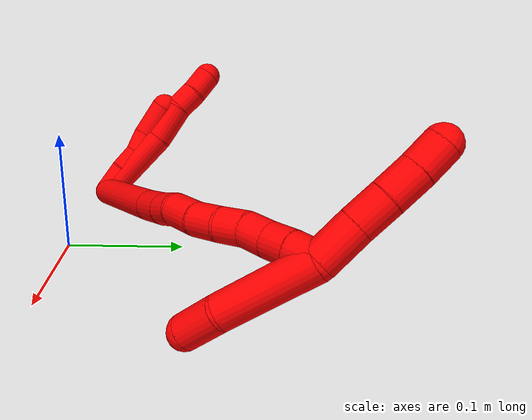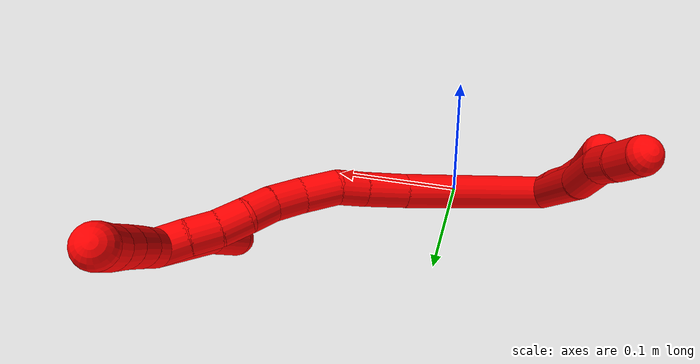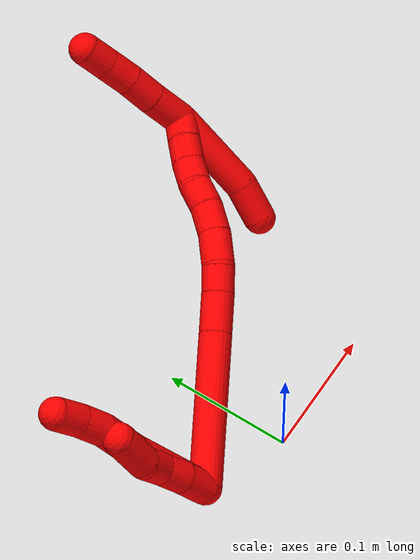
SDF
<sdf version="1.7">
 <world name="default">
  <model name="photoneo_s_sensor">
   <static>1</static>
   <pose>0 0 2 1.57079 1.57079 3.14159</pose>
   <link name="link">
    <inertial><mass>0.1</mass></inertial>
    <sensor name="sensor" type="depth">
     <update_rate>30</update_rate>
     <camera>
      <horizontal_fov>1.22</horizontal_fov>
      <image><width>1920</width><height>1200</height><format>B8G8R8</format></image>
      <clip><near>0.1</near><far>4</far></clip>
      <depth_camera><output>points</output></depth_camera>
     </camera>
     <plugin name="camera_plugin" filename="libgazebo_ros_depth_camera.so">
      <baseline>0.2</baseline>
      <alwaysOn>1</alwaysOn>
      <updateRate>0.0</updateRate>
      <cameraName>camera_ir</cameraName>
      <imageTopicName>/camera/color/image_raw</imageTopicName>
      <cameraInfoTopicName>/camera/color/camera_info</cameraInfoTopicName>
      <depthImageTopicName>/camera/depth/image_raw</depthImageTopicName>
      <depthImageCameraInfoTopicName>/camera/depth/camera_info</depthImageCameraInfoTopicName>
      <pointCloudTopicName>/camera/depth/points</pointCloudTopicName>
      <frameName>fr_optical</frameName>
      <pointCloudCutoff>0.1</pointCloudCutoff>
      <pointCloudCutoffMax>2.0</pointCloudCutoffMax>
      <distortionK1>0</distortionK1>
      <distortionK2>0</distortionK2>
      <distortionK3>0</distortionK3>
      <distortionT1>0</distortionT1>
      <distortionT2>0</distortionT2>
      <CxPrime>0</CxPrime>
      <Cx>0</Cx>
      <Cy>0</Cy>
      <focalLength>0</focalLength>
      <hackBaseline>0</hackBaseline>
     </plugin>
    </sensor>
   </link>
  </model>
  <model name="bin">
   <static>1</static>
   <link name="bottom">
    <collision name="collision-bottom">
     <pose>0 0 -0.01 0 -0 0</pose>
     <geometry><box><size>0.8 0.6 0.02</size></box></geometry>
     <surface>
      <friction><ode><mu>100</mu><mu2>100</mu2></ode></friction>
      <contact><collide_bitmask>65535</collide_bitmask></contact>
     </surface>
    </collision>
   </link>
   <link name="west_wall">
    <collision name="collision-west_wall">
     <pose>-0.41 0 0.1 0 -0 0</pose>
     <geometry><box><size>0.02 0.6 0.2</size></box></geometry>
     <surface>
      <friction><ode><mu>100</mu><mu2>100</mu2></ode></friction>
      <contact><collide_bitmask>65535</collide_bitmask></contact>
     </surface>
    </collision>
   </link>
   <link name="east_wall">
    <collision name="collision-east_wall">
     <pose>0.41 0 0.1 0 -0 0</pose>
     <geometry><box><size>0.02 0.6 0.2</size></box></geometry>
     <surface>
      <friction><ode><mu>100</mu><mu2>100</mu2></ode></friction>
      <contact><collide_bitmask>65535</collide_bitmask></contact>
     </surface>
    </collision>
   </link>
   <link name="south_wall">
    <collision name="collision-south_wall">
     <pose>0 -0.31 0.1 0 -0 0</pose>
     <geometry><box><size>0.8 0.02 0.2</size></box></geometry>
     <surface>
      <friction><ode><mu>100</mu><mu2>100</mu2></ode></friction>
      <contact><collide_bitmask>65535</collide_bitmask></contact>
     </surface>
    </collision>
   </link>
   <link name="north_wall">
    <collision name="collision-north_wall">
     <pose>0 0.31 0.1 0 -0 0</pose>
     <geometry><box><size>0.8 0.02 0.2</size></box></geometry>
     <surface>
      <friction><ode><mu>100</mu><mu2>100</mu2></ode></friction>
      <contact><collide_bitmask>65535</collide_bitmask></contact>
     </surface>
    </collision>
   </link>
  </model>
  <model name="2">
   <static>0</static>
   <link name="2">
    <collision name="collision-cylinder-e_1_2_8">
     <pose>0.003399 -0.003873 -0.035125 3.03178 0.095888 1.43534</pose>
     <geometry><cylinder><radius>0.0125</radius><length>0.071003</length></cylinder></geometry>
     <surface>
      <friction><ode><mu>1.16</mu><mu2>1.16</mu2><slip1>0</slip1><slip2>0</slip2></ode></friction>
      <contact><ode><kp>1e+06</kp><kd>1</kd><max_vel>0</max_vel><min_depth>0.001</min_depth></ode></contact>
     </surface>
    </collision>
    <visual name="visual-cylinder-e_1_2_8">
     <pose>0.003399 -0.003873 -0.035125 3.03178 0.095888 1.43534</pose>
     <geometry><cylinder><radius>0.0125</radius><length>0.071003</length></cylinder></geometry>
     <material><ambient>1 0 0 1</ambient></material>
    </visual>
    <collision name="collision-cylinder-e_2_8_9">
     <pose>0.00718 -0.006659 -0.087976 -3.08033 0.021536 -0.675872</pose>
     <geometry><cylinder><radius>0.0125</radius><length>0.035525</length></cylinder></geometry>
     <surface>
      <friction><ode><mu>1.16</mu><mu2>1.16</mu2><slip1>0</slip1><slip2>0</slip2></ode></friction>
      <contact><ode><kp>1e+06</kp><kd>1</kd><max_vel>0</max_vel><min_depth>0.001</min_depth></ode></contact>
     </surface>
    </collision>
    <visual name="visual-cylinder-e_2_8_9">
     <pose>0.00718 -0.006659 -0.087976 -3.08033 0.021536 -0.675872</pose>
     <geometry><cylinder><radius>0.0125</radius><length>0.035525</length></cylinder></geometry>
     <material><ambient>1 0 0 1</ambient></material>
    </visual>
    <collision name="collision-cylinder-e_3_9_10">
     <pose>0.008071 -0.007636 -0.116144 2.94641 0.047664 0.477644</pose>
     <geometry><cylinder><radius>0.0125</radius><length>0.021316</length></cylinder></geometry>
     <surface>
      <friction><ode><mu>1.16</mu><mu2>1.16</mu2><slip1>0</slip1><slip2>0</slip2></ode></friction>
      <contact><ode><kp>1e+06</kp><kd>1</kd><max_vel>0</max_vel><min_depth>0.001</min_depth></ode></contact>
     </surface>
    </collision>
    <visual name="visual-cylinder-e_3_9_10">
     <pose>0.008071 -0.007636 -0.116144 2.94641 0.047664 0.477644</pose>
     <geometry><cylinder><radius>0.0125</radius><length>0.021316</length></cylinder></geometry>
     <material><ambient>1 0 0 1</ambient></material>
    </visual>
    <collision name="collision-cylinder-e_4_10_6">
     <pose>0.007525 -0.011592 -0.137453 2.96925 -0.095231 -1.00816</pose>
     <geometry><cylinder><radius>0.0125</radius><length>0.022157</length></cylinder></geometry>
     <surface>
      <friction><ode><mu>1.16</mu><mu2>1.16</mu2><slip1>0</slip1><slip2>0</slip2></ode></friction>
      <contact><ode><kp>1e+06</kp><kd>1</kd><max_vel>0</max_vel><min_depth>0.001</min_depth></ode></contact>
     </surface>
    </collision>
    <visual name="visual-cylinder-e_4_10_6">
     <pose>0.007525 -0.011592 -0.137453 2.96925 -0.095231 -1.00816</pose>
     <geometry><cylinder><radius>0.0125</radius><length>0.022157</length></cylinder></geometry>
     <material><ambient>1 0 0 1</ambient></material>
    </visual>
    <collision name="collision-cylinder-e_1_2_11">
     <pose>-0.000325 -0.000441 -0.012446 3.10614 -0.026102 -1.26918</pose>
     <geometry><cylinder><radius>0.0125</radius><length>0.024916</length></cylinder></geometry>
     <surface>
      <friction><ode><mu>1.16</mu><mu2>1.16</mu2><slip1>0</slip1><slip2>0</slip2></ode></friction>
      <contact><ode><kp>1e+06</kp><kd>1</kd><max_vel>0</max_vel><min_depth>0.001</min_depth></ode></contact>
     </surface>
    </collision>
    <visual name="visual-cylinder-e_1_2_11">
     <pose>-0.000325 -0.000441 -0.012446 3.10614 -0.026102 -1.26918</pose>
     <geometry><cylinder><radius>0.0125</radius><length>0.024916</length></cylinder></geometry>
     <material><ambient>1 0 0 1</ambient></material>
    </visual>
    <collision name="collision-cylinder-e_2_11_12">
     <pose>-0.00057 -0.002339 -0.035355 3.00329 0.00764 0.110201</pose>
     <geometry><cylinder><radius>0.0125</radius><length>0.02113</length></cylinder></geometry>
     <surface>
      <friction><ode><mu>1.16</mu><mu2>1.16</mu2><slip1>0</slip1><slip2>0</slip2></ode></friction>
      <contact><ode><kp>1e+06</kp><kd>1</kd><max_vel>0</max_vel><min_depth>0.001</min_depth></ode></contact>
     </surface>
    </collision>
    <visual name="visual-cylinder-e_2_11_12">
     <pose>-0.00057 -0.002339 -0.035355 3.00329 0.00764 0.110201</pose>
     <geometry><cylinder><radius>0.0125</radius><length>0.02113</length></cylinder></geometry>
     <material><ambient>1 0 0 1</ambient></material>
    </visual>
    <collision name="collision-cylinder-e_3_12_13">
     <pose>-0.00283 -0.00335 -0.05595 -3.0976 -0.22686 2.76002</pose>
     <geometry><cylinder><radius>0.0125</radius><length>0.020814</length></cylinder></geometry>
     <surface>
      <friction><ode><mu>1.16</mu><mu2>1.16</mu2><slip1>0</slip1><slip2>0</slip2></ode></friction>
      <contact><ode><kp>1e+06</kp><kd>1</kd><max_vel>0</max_vel><min_depth>0.001</min_depth></ode></contact>
     </surface>
    </collision>
    <visual name="visual-cylinder-e_3_12_13">
     <pose>-0.00283 -0.00335 -0.05595 -3.0976 -0.22686 2.76002</pose>
     <geometry><cylinder><radius>0.0125</radius><length>0.020814</length></cylinder></geometry>
     <material><ambient>1 0 0 1</ambient></material>
    </visual>
    <collision name="collision-cylinder-e_4_13_5">
     <pose>-0.003397 -0.000539 -0.082385 -2.99754 0.107256 -1.27931</pose>
     <geometry><cylinder><radius>0.0125</radius><length>0.03314</length></cylinder></geometry>
     <surface>
      <friction><ode><mu>1.16</mu><mu2>1.16</mu2><slip1>0</slip1><slip2>0</slip2></ode></friction>
      <contact><ode><kp>1e+06</kp><kd>1</kd><max_vel>0</max_vel><min_depth>0.001</min_depth></ode></contact>
     </surface>
    </collision>
    <visual name="visual-cylinder-e_4_13_5">
     <pose>-0.003397 -0.000539 -0.082385 -2.99754 0.107256 -1.27931</pose>
     <geometry><cylinder><radius>0.0125</radius><length>0.03314</length></cylinder></geometry>
     <material><ambient>1 0 0 1</ambient></material>
    </visual>
    <collision name="collision-cylinder-e_1_2_14">
     <pose>0.053528 0.022587 -0.009626 -1.97365 1.14075 -1.54107</pose>
     <geometry><cylinder><radius>0.0125</radius><length>0.117781</length></cylinder></geometry>
     <surface>
      <friction><ode><mu>1.16</mu><mu2>1.16</mu2><slip1>0</slip1><slip2>0</slip2></ode></friction>
      <contact><ode><kp>1e+06</kp><kd>1</kd><max_vel>0</max_vel><min_depth>0.001</min_depth></ode></contact>
     </surface>
    </collision>
    <visual name="visual-cylinder-e_1_2_14">
     <pose>0.053528 0.022587 -0.009626 -1.97365 1.14075 -1.54107</pose>
     <geometry><cylinder><radius>0.0125</radius><length>0.117781</length></cylinder></geometry>
     <material><ambient>1 0 0 1</ambient></material>
    </visual>
    <collision name="collision-cylinder-e_2_14_15">
     <pose>0.121036 0.051438 -0.022252 -2.01755 1.10964 -1.55477</pose>
     <geometry><cylinder><radius>0.0125</radius><length>0.03122</length></cylinder></geometry>
     <surface>
      <friction><ode><mu>1.16</mu><mu2>1.16</mu2><slip1>0</slip1><slip2>0</slip2></ode></friction>
      <contact><ode><kp>1e+06</kp><kd>1</kd><max_vel>0</max_vel><min_depth>0.001</min_depth></ode></contact>
     </surface>
    </collision>
    <visual name="visual-cylinder-e_2_14_15">
     <pose>0.121036 0.051438 -0.022252 -2.01755 1.10964 -1.55477</pose>
     <geometry><cylinder><radius>0.0125</radius><length>0.03122</length></cylinder></geometry>
     <material><ambient>1 0 0 1</ambient></material>
    </visual>
    <collision name="collision-cylinder-e_3_15_16">
     <pose>0.144085 0.061903 -0.028025 -2.15409 1.06426 -1.66047</pose>
     <geometry><cylinder><radius>0.0125</radius><length>0.020746</length></cylinder></geometry>
     <surface>
      <friction><ode><mu>1.16</mu><mu2>1.16</mu2><slip1>0</slip1><slip2>0</slip2></ode></friction>
      <contact><ode><kp>1e+06</kp><kd>1</kd><max_vel>0</max_vel><min_depth>0.001</min_depth></ode></contact>
     </surface>
    </collision>
    <visual name="visual-cylinder-e_3_15_16">
     <pose>0.144085 0.061903 -0.028025 -2.15409 1.06426 -1.66047</pose>
     <geometry><cylinder><radius>0.0125</radius><length>0.020746</length></cylinder></geometry>
     <material><ambient>1 0 0 1</ambient></material>
    </visual>
    <collision name="collision-cylinder-e_4_16_17">
     <pose>0.166325 0.068274 -0.032793 -2.31436 1.35048 -2.13881</pose>
     <geometry><cylinder><radius>0.0125</radius><length>0.026991</length></cylinder></geometry>
     <surface>
      <friction><ode><mu>1.16</mu><mu2>1.16</mu2><slip1>0</slip1><slip2>0</slip2></ode></friction>
      <contact><ode><kp>1e+06</kp><kd>1</kd><max_vel>0</max_vel><min_depth>0.001</min_depth></ode></contact>
     </surface>
    </collision>
    <visual name="visual-cylinder-e_4_16_17">
     <pose>0.166325 0.068274 -0.032793 -2.31436 1.35048 -2.13881</pose>
     <geometry><cylinder><radius>0.0125</radius><length>0.026991</length></cylinder></geometry>
     <material><ambient>1 0 0 1</ambient></material>
    </visual>
    <collision name="collision-cylinder-e_5_17_18">
     <pose>0.19055 0.071285 -0.038288 -2.90598 1.25617 -2.81847</pose>
     <geometry><cylinder><radius>0.0125</radius><length>0.023253</length></cylinder></geometry>
     <surface>
      <friction><ode><mu>1.16</mu><mu2>1.16</mu2><slip1>0</slip1><slip2>0</slip2></ode></friction>
      <contact><ode><kp>1e+06</kp><kd>1</kd><max_vel>0</max_vel><min_depth>0.001</min_depth></ode></contact>
     </surface>
    </collision>
    <visual name="visual-cylinder-e_5_17_18">
     <pose>0.19055 0.071285 -0.038288 -2.90598 1.25617 -2.81847</pose>
     <geometry><cylinder><radius>0.0125</radius><length>0.023253</length></cylinder></geometry>
     <material><ambient>1 0 0 1</ambient></material>
    </visual>
    <collision name="collision-cylinder-e_6_18_19">
     <pose>0.210859 0.071176 -0.045471 2.88942 1.18074 2.76768</pose>
     <geometry><cylinder><radius>0.0125</radius><length>0.020008</length></cylinder></geometry>
     <surface>
      <friction><ode><mu>1.16</mu><mu2>1.16</mu2><slip1>0</slip1><slip2>0</slip2></ode></friction>
      <contact><ode><kp>1e+06</kp><kd>1</kd><max_vel>0</max_vel><min_depth>0.001</min_depth></ode></contact>
     </surface>
    </collision>
    <visual name="visual-cylinder-e_6_18_19">
     <pose>0.210859 0.071176 -0.045471 2.88942 1.18074 2.76768</pose>
     <geometry><cylinder><radius>0.0125</radius><length>0.020008</length></cylinder></geometry>
     <material><ambient>1 0 0 1</ambient></material>
    </visual>
    <collision name="collision-cylinder-e_7_19_20">
     <pose>0.230004 0.069885 -0.050578 2.90634 1.42383 2.86938</pose>
     <geometry><cylinder><radius>0.0125</radius><length>0.02</length></cylinder></geometry>
     <surface>
      <friction><ode><mu>1.16</mu><mu2>1.16</mu2><slip1>0</slip1><slip2>0</slip2></ode></friction>
      <contact><ode><kp>1e+06</kp><kd>1</kd><max_vel>0</max_vel><min_depth>0.001</min_depth></ode></contact>
     </surface>
    </collision>
    <visual name="visual-cylinder-e_7_19_20">
     <pose>0.230004 0.069885 -0.050578 2.90634 1.42383 2.86938</pose>
     <geometry><cylinder><radius>0.0125</radius><length>0.02</length></cylinder></geometry>
     <material><ambient>1 0 0 1</ambient></material>
    </visual>
    <collision name="collision-cylinder-e_8_20_21">
     <pose>0.249667 0.070612 -0.053843 -2.61585 1.35629 -2.49683</pose>
     <geometry><cylinder><radius>0.0125</radius><length>0.02</length></cylinder></geometry>
     <surface>
      <friction><ode><mu>1.16</mu><mu2>1.16</mu2><slip1>0</slip1><slip2>0</slip2></ode></friction>
      <contact><ode><kp>1e+06</kp><kd>1</kd><max_vel>0</max_vel><min_depth>0.001</min_depth></ode></contact>
     </surface>
    </collision>
    <visual name="visual-cylinder-e_8_20_21">
     <pose>0.249667 0.070612 -0.053843 -2.61585 1.35629 -2.49683</pose>
     <geometry><cylinder><radius>0.0125</radius><length>0.02</length></cylinder></geometry>
     <material><ambient>1 0 0 1</ambient></material>
    </visual>
    <collision name="collision-cylinder-e_9_21_1">
     <pose>0.269355 0.072462 -0.056709 -2.48986 1.44155 -2.40714</pose>
     <geometry><cylinder><radius>0.0125</radius><length>0.02</length></cylinder></geometry>
     <surface>
      <friction><ode><mu>1.16</mu><mu2>1.16</mu2><slip1>0</slip1><slip2>0</slip2></ode></friction>
      <contact><ode><kp>1e+06</kp><kd>1</kd><max_vel>0</max_vel><min_depth>0.001</min_depth></ode></contact>
     </surface>
    </collision>
    <visual name="visual-cylinder-e_9_21_1">
     <pose>0.269355 0.072462 -0.056709 -2.48986 1.44155 -2.40714</pose>
     <geometry><cylinder><radius>0.0125</radius><length>0.02</length></cylinder></geometry>
     <material><ambient>1 0 0 1</ambient></material>
    </visual>
    <collision name="collision-cylinder-e_1_1_22">
     <pose>0.261816 0.075236 -0.027598 -0.065991 -0.524076 0.017705</pose>
     <geometry><cylinder><radius>0.0125</radius><length>0.069767</length></cylinder></geometry>
     <surface>
      <friction><ode><mu>1.16</mu><mu2>1.16</mu2><slip1>0</slip1><slip2>0</slip2></ode></friction>
      <contact><ode><kp>1e+06</kp><kd>1</kd><max_vel>0</max_vel><min_depth>0.001</min_depth></ode></contact>
     </surface>
    </collision>
    <visual name="visual-cylinder-e_1_1_22">
     <pose>0.261816 0.075236 -0.027598 -0.065991 -0.524076 0.017705</pose>
     <geometry><cylinder><radius>0.0125</radius><length>0.069767</length></cylinder></geometry>
     <material><ambient>1 0 0 1</ambient></material>
    </visual>
    <collision name="collision-cylinder-e_2_22_4">
     <pose>0.235913 0.074715 0.01482 0.201758 -0.59287 -0.061814</pose>
     <geometry><cylinder><radius>0.0125</radius><length>0.030233</length></cylinder></geometry>
     <surface>
      <friction><ode><mu>1.16</mu><mu2>1.16</mu2><slip1>0</slip1><slip2>0</slip2></ode></friction>
      <contact><ode><kp>1e+06</kp><kd>1</kd><max_vel>0</max_vel><min_depth>0.001</min_depth></ode></contact>
     </surface>
    </collision>
    <visual name="visual-cylinder-e_2_22_4">
     <pose>0.235913 0.074715 0.01482 0.201758 -0.59287 -0.061814</pose>
     <geometry><cylinder><radius>0.0125</radius><length>0.030233</length></cylinder></geometry>
     <material><ambient>1 0 0 1</ambient></material>
    </visual>
    <collision name="collision-cylinder-e_1_1_23">
     <pose>0.282147 0.072086 -0.072889 3.06536 0.186945 2.36888</pose>
     <geometry><cylinder><radius>0.0125</radius><length>0.030938</length></cylinder></geometry>
     <surface>
      <friction><ode><mu>1.16</mu><mu2>1.16</mu2><slip1>0</slip1><slip2>0</slip2></ode></friction>
      <contact><ode><kp>1e+06</kp><kd>1</kd><max_vel>0</max_vel><min_depth>0.001</min_depth></ode></contact>
     </surface>
    </collision>
    <visual name="visual-cylinder-e_1_1_23">
     <pose>0.282147 0.072086 -0.072889 3.06536 0.186945 2.36888</pose>
     <geometry><cylinder><radius>0.0125</radius><length>0.030938</length></cylinder></geometry>
     <material><ambient>1 0 0 1</ambient></material>
    </visual>
    <collision name="collision-cylinder-e_2_23_24">
     <pose>0.287899 0.070182 -0.09966 3.07738 0.24236 2.62586</pose>
     <geometry><cylinder><radius>0.0125</radius><length>0.023979</length></cylinder></geometry>
     <surface>
      <friction><ode><mu>1.16</mu><mu2>1.16</mu2><slip1>0</slip1><slip2>0</slip2></ode></friction>
      <contact><ode><kp>1e+06</kp><kd>1</kd><max_vel>0</max_vel><min_depth>0.001</min_depth></ode></contact>
     </surface>
    </collision>
    <visual name="visual-cylinder-e_2_23_24">
     <pose>0.287899 0.070182 -0.09966 3.07738 0.24236 2.62586</pose>
     <geometry><cylinder><radius>0.0125</radius><length>0.023979</length></cylinder></geometry>
     <material><ambient>1 0 0 1</ambient></material>
    </visual>
    <collision name="collision-cylinder-e_3_24_25">
     <pose>0.293103 0.068142 -0.122785 3.02974 0.198199 2.11593</pose>
     <geometry><cylinder><radius>0.0125</radius><length>0.023626</length></cylinder></geometry>
     <surface>
      <friction><ode><mu>1.16</mu><mu2>1.16</mu2><slip1>0</slip1><slip2>0</slip2></ode></friction>
      <contact><ode><kp>1e+06</kp><kd>1</kd><max_vel>0</max_vel><min_depth>0.001</min_depth></ode></contact>
     </surface>
    </collision>
    <visual name="visual-cylinder-e_3_24_25">
     <pose>0.293103 0.068142 -0.122785 3.02974 0.198199 2.11593</pose>
     <geometry><cylinder><radius>0.0125</radius><length>0.023626</length></cylinder></geometry>
     <material><ambient>1 0 0 1</ambient></material>
    </visual>
    <collision name="collision-cylinder-e_4_25_3">
     <pose>0.296942 0.066033 -0.144884 3.06461 0.141553 2.14634</pose>
     <geometry><cylinder><radius>0.0125</radius><length>0.021456</length></cylinder></geometry>
     <surface>
      <friction><ode><mu>1.16</mu><mu2>1.16</mu2><slip1>0</slip1><slip2>0</slip2></ode></friction>
      <contact><ode><kp>1e+06</kp><kd>1</kd><max_vel>0</max_vel><min_depth>0.001</min_depth></ode></contact>
     </surface>
    </collision>
    <visual name="visual-cylinder-e_4_25_3">
     <pose>0.296942 0.066033 -0.144884 3.06461 0.141553 2.14634</pose>
     <geometry><cylinder><radius>0.0125</radius><length>0.021456</length></cylinder></geometry>
     <material><ambient>1 0 0 1</ambient></material>
    </visual>
    <collision name="collision-sphere-3">
     <pose>0.298456 0.065216 -0.155473 0 -0 0</pose>
     <geometry><sphere><radius>0.0125</radius></sphere></geometry>
     <surface>
      <friction><ode><mu>1.16</mu><mu2>1.16</mu2><slip1>0</slip1><slip2>0</slip2></ode></friction>
      <contact><ode><kp>1e+06</kp><kd>1</kd><max_vel>0</max_vel><min_depth>0.001</min_depth></ode></contact>
     </surface>
    </collision>
    <visual name="visual-sphere-3">
     <pose>0.298456 0.065216 -0.155473 0 -0 0</pose>
     <geometry><sphere><radius>0.0125</radius></sphere></geometry>
     <material><ambient>1 0 0 1</ambient></material>
    </visual>
    <collision name="collision-sphere-25">
     <pose>0.295429 0.066849 -0.134294 0 -0 0</pose>
     <geometry><sphere><radius>0.0125</radius></sphere></geometry>
     <surface>
      <friction><ode><mu>1.16</mu><mu2>1.16</mu2><slip1>0</slip1><slip2>0</slip2></ode></friction>
      <contact><ode><kp>1e+06</kp><kd>1</kd><max_vel>0</max_vel><min_depth>0.001</min_depth></ode></contact>
     </surface>
    </collision>
    <visual name="visual-sphere-25">
     <pose>0.295429 0.066849 -0.134294 0 -0 0</pose>
     <geometry><sphere><radius>0.0125</radius></sphere></geometry>
     <material><ambient>1 0 0 1</ambient></material>
    </visual>
    <collision name="collision-sphere-24">
     <pose>0.290777 0.069435 -0.111275 0 -0 0</pose>
     <geometry><sphere><radius>0.0125</radius></sphere></geometry>
     <surface>
      <friction><ode><mu>1.16</mu><mu2>1.16</mu2><slip1>0</slip1><slip2>0</slip2></ode></friction>
      <contact><ode><kp>1e+06</kp><kd>1</kd><max_vel>0</max_vel><min_depth>0.001</min_depth></ode></contact>
     </surface>
    </collision>
    <visual name="visual-sphere-24">
     <pose>0.290777 0.069435 -0.111275 0 -0 0</pose>
     <geometry><sphere><radius>0.0125</radius></sphere></geometry>
     <material><ambient>1 0 0 1</ambient></material>
    </visual>
    <collision name="collision-sphere-23">
     <pose>0.285022 0.070929 -0.088045 0 -0 0</pose>
     <geometry><sphere><radius>0.0125</radius></sphere></geometry>
     <surface>
      <friction><ode><mu>1.16</mu><mu2>1.16</mu2><slip1>0</slip1><slip2>0</slip2></ode></friction>
      <contact><ode><kp>1e+06</kp><kd>1</kd><max_vel>0</max_vel><min_depth>0.001</min_depth></ode></contact>
     </surface>
    </collision>
    <visual name="visual-sphere-23">
     <pose>0.285022 0.070929 -0.088045 0 -0 0</pose>
     <geometry><sphere><radius>0.0125</radius></sphere></geometry>
     <material><ambient>1 0 0 1</ambient></material>
    </visual>
    <collision name="collision-sphere-4">
     <pose>0.227467 0.072203 0.027103 0 -0 0</pose>
     <geometry><sphere><radius>0.0125</radius></sphere></geometry>
     <surface>
      <friction><ode><mu>1.16</mu><mu2>1.16</mu2><slip1>0</slip1><slip2>0</slip2></ode></friction>
      <contact><ode><kp>1e+06</kp><kd>1</kd><max_vel>0</max_vel><min_depth>0.001</min_depth></ode></contact>
     </surface>
    </collision>
    <visual name="visual-sphere-4">
     <pose>0.227467 0.072203 0.027103 0 -0 0</pose>
     <geometry><sphere><radius>0.0125</radius></sphere></geometry>
     <material><ambient>1 0 0 1</ambient></material>
    </visual>
    <collision name="collision-sphere-22">
     <pose>0.244359 0.077227 0.002538 0 -0 0</pose>
     <geometry><sphere><radius>0.0125</radius></sphere></geometry>
     <surface>
      <friction><ode><mu>1.16</mu><mu2>1.16</mu2><slip1>0</slip1><slip2>0</slip2></ode></friction>
      <contact><ode><kp>1e+06</kp><kd>1</kd><max_vel>0</max_vel><min_depth>0.001</min_depth></ode></contact>
     </surface>
    </collision>
    <visual name="visual-sphere-22">
     <pose>0.244359 0.077227 0.002538 0 -0 0</pose>
     <geometry><sphere><radius>0.0125</radius></sphere></geometry>
     <material><ambient>1 0 0 1</ambient></material>
    </visual>
    <collision name="collision-sphere-1">
     <pose>0.279272 0.073244 -0.057734 0 -0 0</pose>
     <geometry><sphere><radius>0.0125</radius></sphere></geometry>
     <surface>
      <friction><ode><mu>1.16</mu><mu2>1.16</mu2><slip1>0</slip1><slip2>0</slip2></ode></friction>
      <contact><ode><kp>1e+06</kp><kd>1</kd><max_vel>0</max_vel><min_depth>0.001</min_depth></ode></contact>
     </surface>
    </collision>
    <visual name="visual-sphere-1">
     <pose>0.279272 0.073244 -0.057734 0 -0 0</pose>
     <geometry><sphere><radius>0.0125</radius></sphere></geometry>
     <material><ambient>1 0 0 1</ambient></material>
    </visual>
    <collision name="collision-sphere-21">
     <pose>0.259438 0.07168 -0.055685 0 -0 0</pose>
     <geometry><sphere><radius>0.0125</radius></sphere></geometry>
     <surface>
      <friction><ode><mu>1.16</mu><mu2>1.16</mu2><slip1>0</slip1><slip2>0</slip2></ode></friction>
      <contact><ode><kp>1e+06</kp><kd>1</kd><max_vel>0</max_vel><min_depth>0.001</min_depth></ode></contact>
     </surface>
    </collision>
    <visual name="visual-sphere-21">
     <pose>0.259438 0.07168 -0.055685 0 -0 0</pose>
     <geometry><sphere><radius>0.0125</radius></sphere></geometry>
     <material><ambient>1 0 0 1</ambient></material>
    </visual>
    <collision name="collision-sphere-11">
     <pose>-0.00065 -0.000883 -0.024891 0 -0 0</pose>
     <geometry><sphere><radius>0.0125</radius></sphere></geometry>
     <surface>
      <friction><ode><mu>1.16</mu><mu2>1.16</mu2><slip1>0</slip1><slip2>0</slip2></ode></friction>
      <contact><ode><kp>1e+06</kp><kd>1</kd><max_vel>0</max_vel><min_depth>0.001</min_depth></ode></contact>
     </surface>
    </collision>
    <visual name="visual-sphere-11">
     <pose>-0.00065 -0.000883 -0.024891 0 -0 0</pose>
     <geometry><sphere><radius>0.0125</radius></sphere></geometry>
     <material><ambient>1 0 0 1</ambient></material>
    </visual>
    <collision name="collision-sphere-6">
     <pose>0.006472 -0.013483 -0.148318 0 -0 0</pose>
     <geometry><sphere><radius>0.0125</radius></sphere></geometry>
     <surface>
      <friction><ode><mu>1.16</mu><mu2>1.16</mu2><slip1>0</slip1><slip2>0</slip2></ode></friction>
      <contact><ode><kp>1e+06</kp><kd>1</kd><max_vel>0</max_vel><min_depth>0.001</min_depth></ode></contact>
     </surface>
    </collision>
    <visual name="visual-sphere-6">
     <pose>0.006472 -0.013483 -0.148318 0 -0 0</pose>
     <geometry><sphere><radius>0.0125</radius></sphere></geometry>
     <material><ambient>1 0 0 1</ambient></material>
    </visual>
    <collision name="collision-sphere-10">
     <pose>0.008578 -0.009701 -0.126588 0 -0 0</pose>
     <geometry><sphere><radius>0.0125</radius></sphere></geometry>
     <surface>
      <friction><ode><mu>1.16</mu><mu2>1.16</mu2><slip1>0</slip1><slip2>0</slip2></ode></friction>
      <contact><ode><kp>1e+06</kp><kd>1</kd><max_vel>0</max_vel><min_depth>0.001</min_depth></ode></contact>
     </surface>
    </collision>
    <visual name="visual-sphere-10">
     <pose>0.008578 -0.009701 -0.126588 0 -0 0</pose>
     <geometry><sphere><radius>0.0125</radius></sphere></geometry>
     <material><ambient>1 0 0 1</ambient></material>
    </visual>
    <collision name="collision-sphere-9">
     <pose>0.007563 -0.005571 -0.105701 0 -0 0</pose>
     <geometry><sphere><radius>0.0125</radius></sphere></geometry>
     <surface>
      <friction><ode><mu>1.16</mu><mu2>1.16</mu2><slip1>0</slip1><slip2>0</slip2></ode></friction>
      <contact><ode><kp>1e+06</kp><kd>1</kd><max_vel>0</max_vel><min_depth>0.001</min_depth></ode></contact>
     </surface>
    </collision>
    <visual name="visual-sphere-9">
     <pose>0.007563 -0.005571 -0.105701 0 -0 0</pose>
     <geometry><sphere><radius>0.0125</radius></sphere></geometry>
     <material><ambient>1 0 0 1</ambient></material>
    </visual>
    <collision name="collision-sphere-2">
     <geometry><sphere><radius>0.0125</radius></sphere></geometry>
     <surface>
      <friction><ode><mu>1.16</mu><mu2>1.16</mu2><slip1>0</slip1><slip2>0</slip2></ode></friction>
      <contact><ode><kp>1e+06</kp><kd>1</kd><max_vel>0</max_vel><min_depth>0.001</min_depth></ode></contact>
     </surface>
    </collision>
    <visual name="visual-sphere-2">
     <geometry><sphere><radius>0.0125</radius></sphere></geometry>
     <material><ambient>1 0 0 1</ambient></material>
    </visual>
    <collision name="collision-sphere-19">
     <pose>0.220112 0.070227 -0.049154 0 -0 0</pose>
     <geometry><sphere><radius>0.0125</radius></sphere></geometry>
     <surface>
      <friction><ode><mu>1.16</mu><mu2>1.16</mu2><slip1>0</slip1><slip2>0</slip2></ode></friction>
      <contact><ode><kp>1e+06</kp><kd>1</kd><max_vel>0</max_vel><min_depth>0.001</min_depth></ode></contact>
     </surface>
    </collision>
    <visual name="visual-sphere-19">
     <pose>0.220112 0.070227 -0.049154 0 -0 0</pose>
     <geometry><sphere><radius>0.0125</radius></sphere></geometry>
     <material><ambient>1 0 0 1</ambient></material>
    </visual>
    <collision name="collision-sphere-8">
     <pose>0.006798 -0.007746 -0.070251 0 -0 0</pose>
     <geometry><sphere><radius>0.0125</radius></sphere></geometry>
     <surface>
      <friction><ode><mu>1.16</mu><mu2>1.16</mu2><slip1>0</slip1><slip2>0</slip2></ode></friction>
      <contact><ode><kp>1e+06</kp><kd>1</kd><max_vel>0</max_vel><min_depth>0.001</min_depth></ode></contact>
     </surface>
    </collision>
    <visual name="visual-sphere-8">
     <pose>0.006798 -0.007746 -0.070251 0 -0 0</pose>
     <geometry><sphere><radius>0.0125</radius></sphere></geometry>
     <material><ambient>1 0 0 1</ambient></material>
    </visual>
    <collision name="collision-sphere-12">
     <pose>-0.000489 -0.003796 -0.045819 0 -0 0</pose>
     <geometry><sphere><radius>0.0125</radius></sphere></geometry>
     <surface>
      <friction><ode><mu>1.16</mu><mu2>1.16</mu2><slip1>0</slip1><slip2>0</slip2></ode></friction>
      <contact><ode><kp>1e+06</kp><kd>1</kd><max_vel>0</max_vel><min_depth>0.001</min_depth></ode></contact>
     </surface>
    </collision>
    <visual name="visual-sphere-12">
     <pose>-0.000489 -0.003796 -0.045819 0 -0 0</pose>
     <geometry><sphere><radius>0.0125</radius></sphere></geometry>
     <material><ambient>1 0 0 1</ambient></material>
    </visual>
    <collision name="collision-sphere-13">
     <pose>-0.00517 -0.002904 -0.066081 0 -0 0</pose>
     <geometry><sphere><radius>0.0125</radius></sphere></geometry>
     <surface>
      <friction><ode><mu>1.16</mu><mu2>1.16</mu2><slip1>0</slip1><slip2>0</slip2></ode></friction>
      <contact><ode><kp>1e+06</kp><kd>1</kd><max_vel>0</max_vel><min_depth>0.001</min_depth></ode></contact>
     </surface>
    </collision>
    <visual name="visual-sphere-13">
     <pose>-0.00517 -0.002904 -0.066081 0 -0 0</pose>
     <geometry><sphere><radius>0.0125</radius></sphere></geometry>
     <material><ambient>1 0 0 1</ambient></material>
    </visual>
    <collision name="collision-sphere-5">
     <pose>-0.001623 0.001826 -0.098689 0 -0 0</pose>
     <geometry><sphere><radius>0.0125</radius></sphere></geometry>
     <surface>
      <friction><ode><mu>1.16</mu><mu2>1.16</mu2><slip1>0</slip1><slip2>0</slip2></ode></friction>
      <contact><ode><kp>1e+06</kp><kd>1</kd><max_vel>0</max_vel><min_depth>0.001</min_depth></ode></contact>
     </surface>
    </collision>
    <visual name="visual-sphere-5">
     <pose>-0.001623 0.001826 -0.098689 0 -0 0</pose>
     <geometry><sphere><radius>0.0125</radius></sphere></geometry>
     <material><ambient>1 0 0 1</ambient></material>
    </visual>
    <collision name="collision-sphere-14">
     <pose>0.107056 0.045174 -0.019252 0 -0 0</pose>
     <geometry><sphere><radius>0.0125</radius></sphere></geometry>
     <surface>
      <friction><ode><mu>1.16</mu><mu2>1.16</mu2><slip1>0</slip1><slip2>0</slip2></ode></friction>
      <contact><ode><kp>1e+06</kp><kd>1</kd><max_vel>0</max_vel><min_depth>0.001</min_depth></ode></contact>
     </surface>
    </collision>
    <visual name="visual-sphere-14">
     <pose>0.107056 0.045174 -0.019252 0 -0 0</pose>
     <geometry><sphere><radius>0.0125</radius></sphere></geometry>
     <material><ambient>1 0 0 1</ambient></material>
    </visual>
    <collision name="collision-sphere-15">
     <pose>0.135015 0.057703 -0.025253 0 -0 0</pose>
     <geometry><sphere><radius>0.0125</radius></sphere></geometry>
     <surface>
      <friction><ode><mu>1.16</mu><mu2>1.16</mu2><slip1>0</slip1><slip2>0</slip2></ode></friction>
      <contact><ode><kp>1e+06</kp><kd>1</kd><max_vel>0</max_vel><min_depth>0.001</min_depth></ode></contact>
     </surface>
    </collision>
    <visual name="visual-sphere-15">
     <pose>0.135015 0.057703 -0.025253 0 -0 0</pose>
     <geometry><sphere><radius>0.0125</radius></sphere></geometry>
     <material><ambient>1 0 0 1</ambient></material>
    </visual>
    <collision name="collision-sphere-16">
     <pose>0.153156 0.066103 -0.030797 0 -0 0</pose>
     <geometry><sphere><radius>0.0125</radius></sphere></geometry>
     <surface>
      <friction><ode><mu>1.16</mu><mu2>1.16</mu2><slip1>0</slip1><slip2>0</slip2></ode></friction>
      <contact><ode><kp>1e+06</kp><kd>1</kd><max_vel>0</max_vel><min_depth>0.001</min_depth></ode></contact>
     </surface>
    </collision>
    <visual name="visual-sphere-16">
     <pose>0.153156 0.066103 -0.030797 0 -0 0</pose>
     <geometry><sphere><radius>0.0125</radius></sphere></geometry>
     <material><ambient>1 0 0 1</ambient></material>
    </visual>
    <collision name="collision-sphere-17">
     <pose>0.179495 0.070445 -0.03479 0 -0 0</pose>
     <geometry><sphere><radius>0.0125</radius></sphere></geometry>
     <surface>
      <friction><ode><mu>1.16</mu><mu2>1.16</mu2><slip1>0</slip1><slip2>0</slip2></ode></friction>
      <contact><ode><kp>1e+06</kp><kd>1</kd><max_vel>0</max_vel><min_depth>0.001</min_depth></ode></contact>
     </surface>
    </collision>
    <visual name="visual-sphere-17">
     <pose>0.179495 0.070445 -0.03479 0 -0 0</pose>
     <geometry><sphere><radius>0.0125</radius></sphere></geometry>
     <material><ambient>1 0 0 1</ambient></material>
    </visual>
    <collision name="collision-sphere-18">
     <pose>0.201606 0.072125 -0.041787 0 -0 0</pose>
     <geometry><sphere><radius>0.0125</radius></sphere></geometry>
     <surface>
      <friction><ode><mu>1.16</mu><mu2>1.16</mu2><slip1>0</slip1><slip2>0</slip2></ode></friction>
      <contact><ode><kp>1e+06</kp><kd>1</kd><max_vel>0</max_vel><min_depth>0.001</min_depth></ode></contact>
     </surface>
    </collision>
    <visual name="visual-sphere-18">
     <pose>0.201606 0.072125 -0.041787 0 -0 0</pose>
     <geometry><sphere><radius>0.0125</radius></sphere></geometry>
     <material><ambient>1 0 0 1</ambient></material>
    </visual>
    <collision name="collision-sphere-20">
     <pose>0.239897 0.069544 -0.052002 0 -0 0</pose>
     <geometry><sphere><radius>0.0125</radius></sphere></geometry>
     <surface>
      <friction><ode><mu>1.16</mu><mu2>1.16</mu2><slip1>0</slip1><slip2>0</slip2></ode></friction>
      <contact><ode><kp>1e+06</kp><kd>1</kd><max_vel>0</max_vel><min_depth>0.001</min_depth></ode></contact>
     </surface>
    </collision>
    <visual name="visual-sphere-20">
     <pose>0.239897 0.069544 -0.052002 0 -0 0</pose>
     <geometry><sphere><radius>0.0125</radius></sphere></geometry>
     <material><ambient>1 0 0 1</ambient></material>
    </visual>
    <inertial>
     <pose>0.128218 0.03747 -0.048723 0 -0 0</pose>
     <mass>0.75</mass>
     <inertia>
      <ixx>2.3e-05</ixx>
      <ixy>0</ixy>
      <ixz>0</ixz>
      <iyy>0.000131</iyy>
      <iyz>0</iyz>
      <izz>-0.000209</izz>
     </inertia>
    </inertial>
   </link>
   <pose>-0.07274 0.021592 0.024115 2.45775 0.16298 0.713233</pose>
  </model>
 </world>
</sdf>
